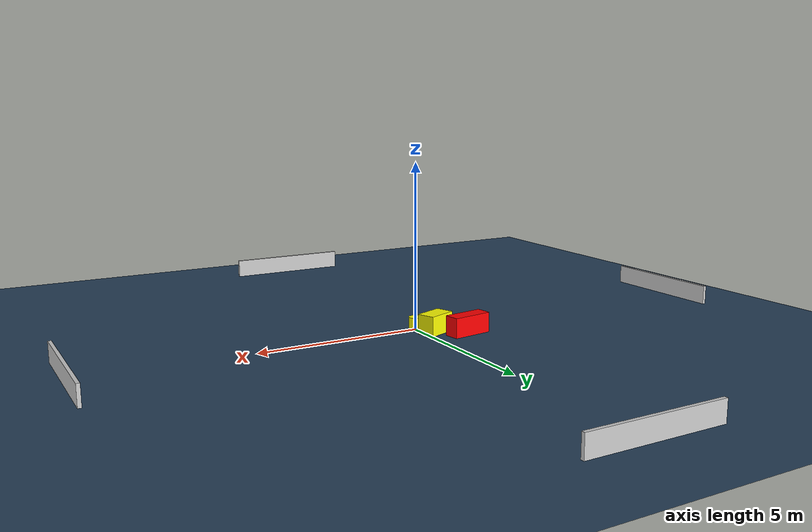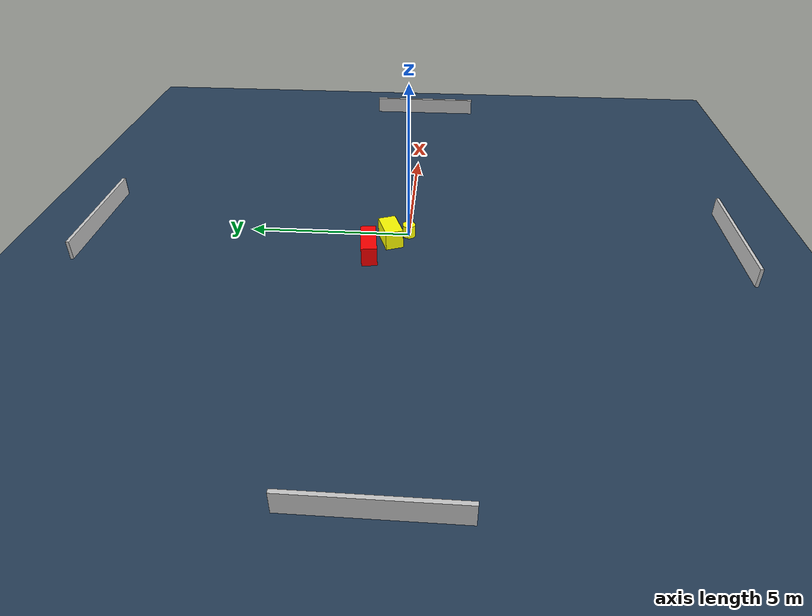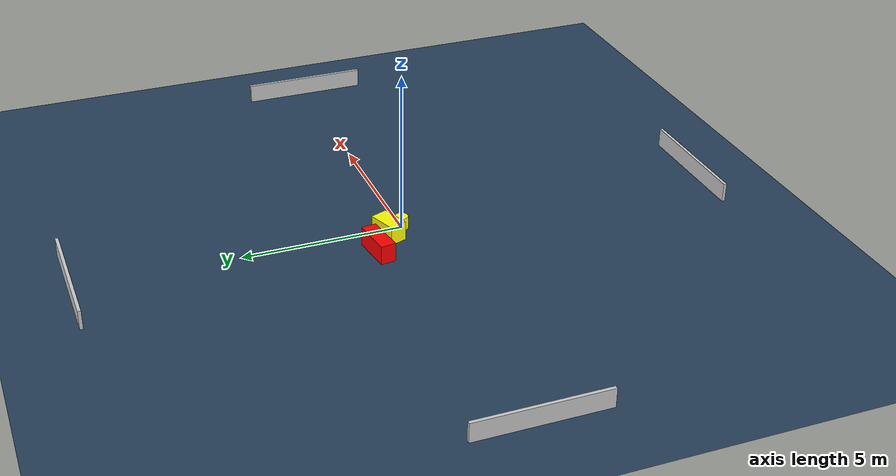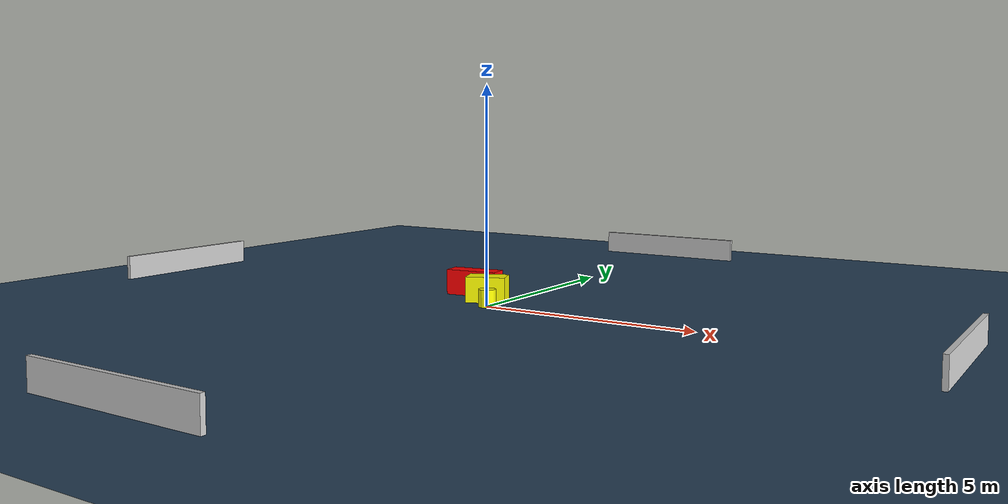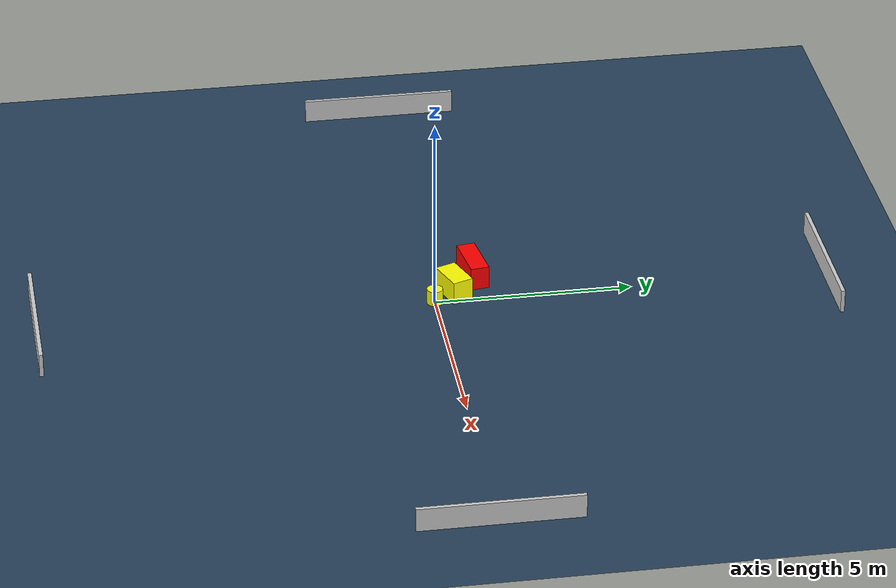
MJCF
<?xml version="1.0" ?>
<mujoco model="generated_environment">
  <option timestep="0.01" integrator="RK4" cone="elliptic"/>
  <default>
    <geom density="1"/>
  </default>
  <asset>
    <texture builtin="gradient" height="3072" name="skybox" rgb1="0.3 0.5 0.7" rgb2="0 0 0" type="skybox" width="512"/>
    <texture builtin="checker" height="300" name="groundplane" rgb1="0.2 0.3 0.4" rgb2="0.1 0.2 0.3" type="2d" width="300"/>
    <material name="groundplane" reflectance="0.2" texrepeat="5 5" texture="groundplane"/>
  </asset>
  <worldbody>
    <light dir="0 0 -1" directional="true" pos="0 0 1.5"/>
    <geom condim="3" friction="0.5 0.005 0.001" material="groundplane" name="floor" pos="0 0 0" size="0 0 0.05" type="plane"/>
    <body name="walls">
      <geom name="wall_1" condim="4" pos="-10.0 0.0 0.3" rgba="0.800000011920929 0.800000011920929 0.800000011920929 1.0" size="0.05 2.0 0.3" type="box"/>
      <geom name="wall_2" condim="4" pos="10.0 0.0 0.3" rgba="0.800000011920929 0.800000011920929 0.800000011920929 1.0" size="0.05 2.0 0.3" type="box"/>
      <geom name="wall_3" condim="4" pos="0.0 -10.0 0.3" rgba="0.800000011920929 0.800000011920929 0.800000011920929 1.0" size="2.0 0.05 0.3" type="box"/>
      <geom name="wall_4" condim="4" pos="0.0 10.0 0.3" rgba="0.800000011920929 0.800000011920929 0.800000011920929 1.0" size="2.0 0.05 0.3" type="box"/>
    </body>
    <body name="robot">
      <joint name="joint_x" type="slide" pos="0 0 0" axis="1 0 0"/>
      <joint name="joint_y" type="slide" pos="0 0 0" axis="0 1 0"/>
      <geom name="robot" type="cylinder" pos="0.0 0.0 0.2" size="0.2 0.2 0.0" mass="5.0" friction="1.0 0.005 0.0001" condim="4" rgba="1.0 1.0 0.0 1.0"/>
    </body>
    <body name="obstacle_1_movable">
      <geom name="obstacle_1_movable" condim="4" pos="-0.35503113716408835 0.5478635569894974 0.3" euler="0 0 110.83350502178014" friction="0.0 0.005 0.001" rgba="1.0 1.0 0.0 1.0" size="0.27206108874649576 0.4581212847135939 0.3" type="box" mass="0.1"/>
      <joint type="free"/>
    </body>
    <body name="obstacle_2_static">
      <geom name="obstacle_2_static" condim="4" pos="-1.1162656394268815 1.1410684868025052 0.3" euler="0 0 8.011492795874231" friction="0.0 0.005 0.001" rgba="1.0 0.0 0.0 1.0" size="0.6296767610485201 0.23537187518036257 0.3" type="box"/>
    </body>
  </worldbody>
  <actuator>
    <motor name="actuator_x" joint="joint_x" gear="1" ctrlrange="-1 1"/>
    <motor name="actuator_y" joint="joint_y" gear="1" ctrlrange="-1 1"/>
  </actuator>
</mujoco>
